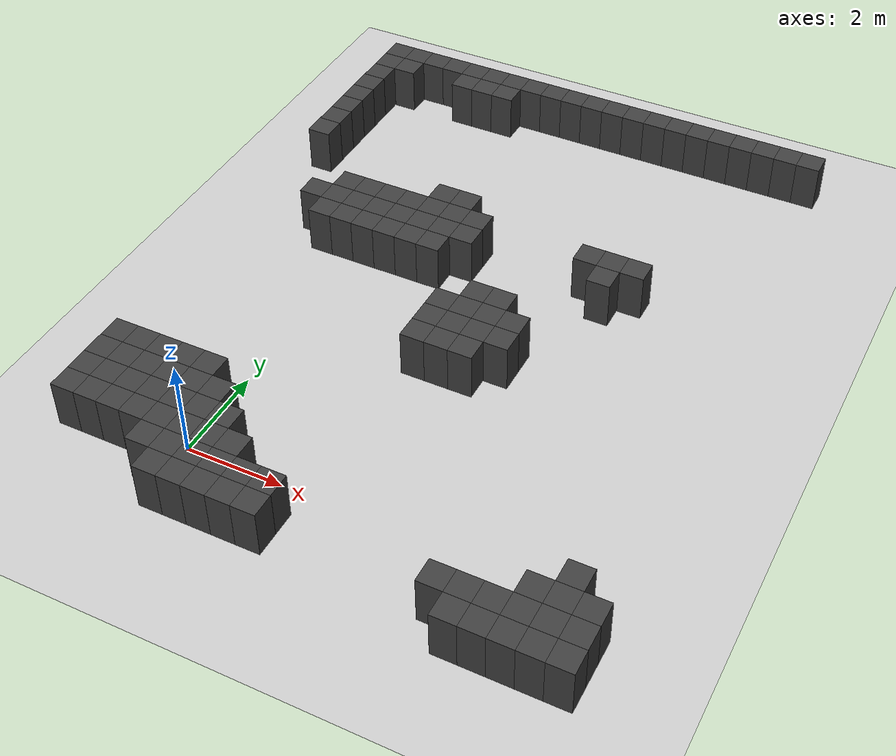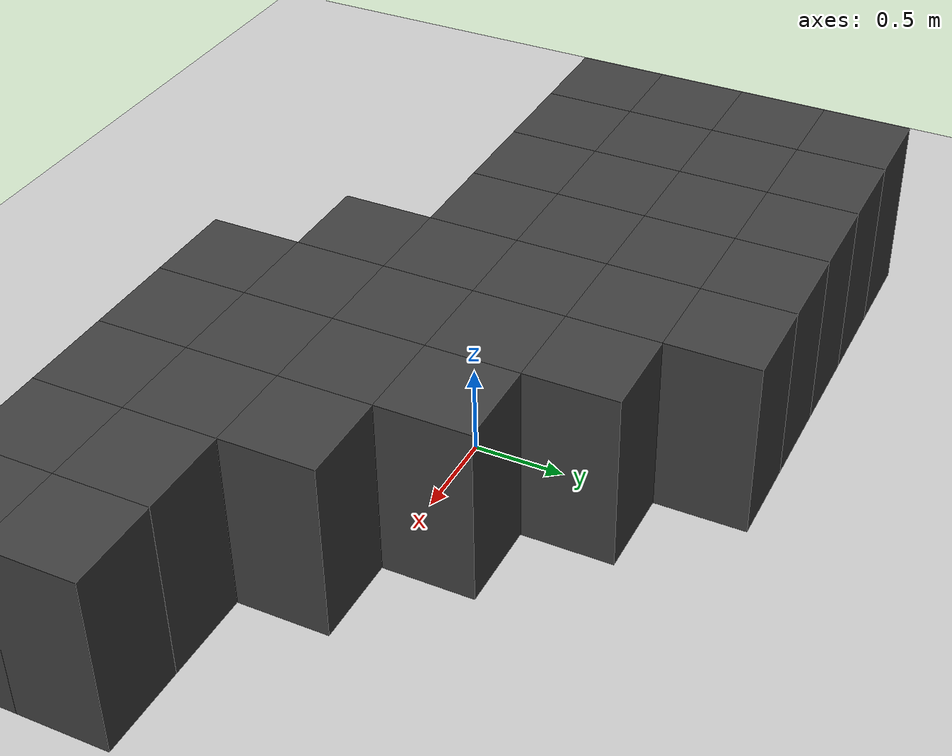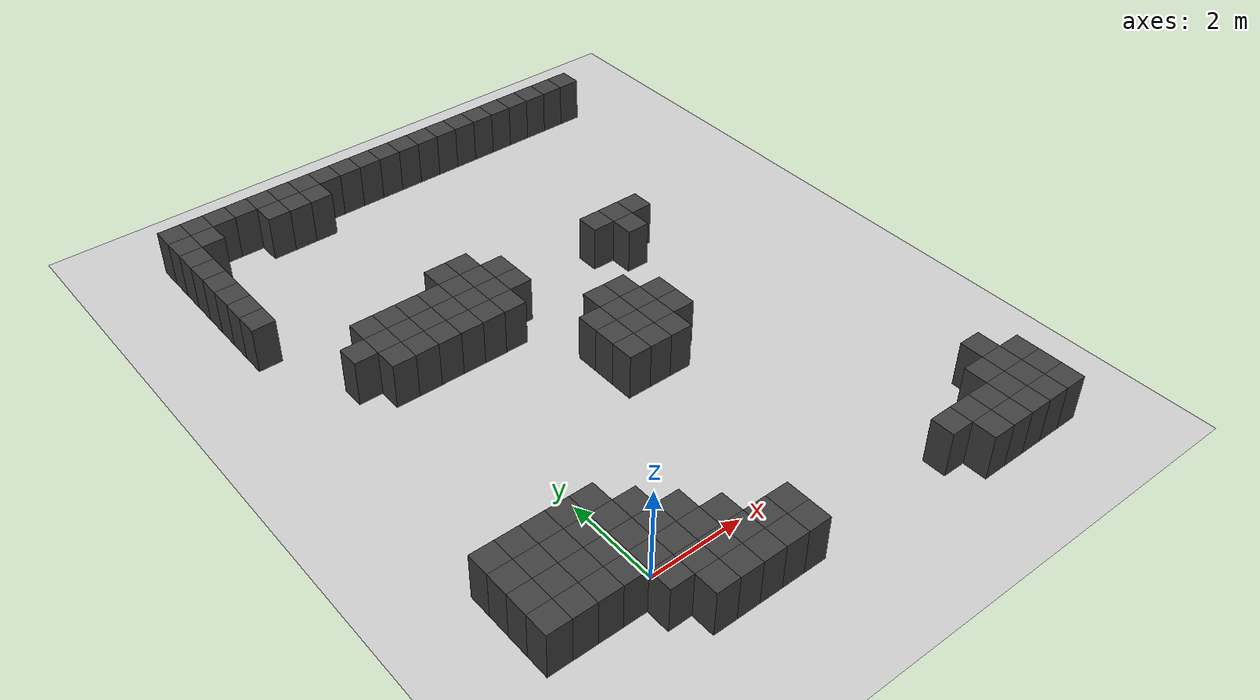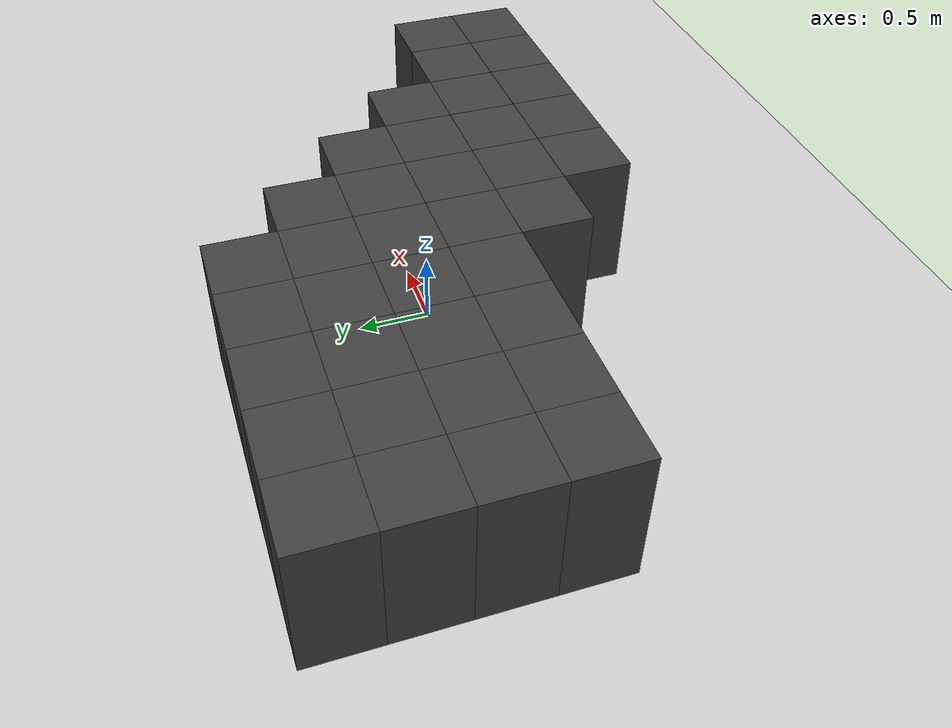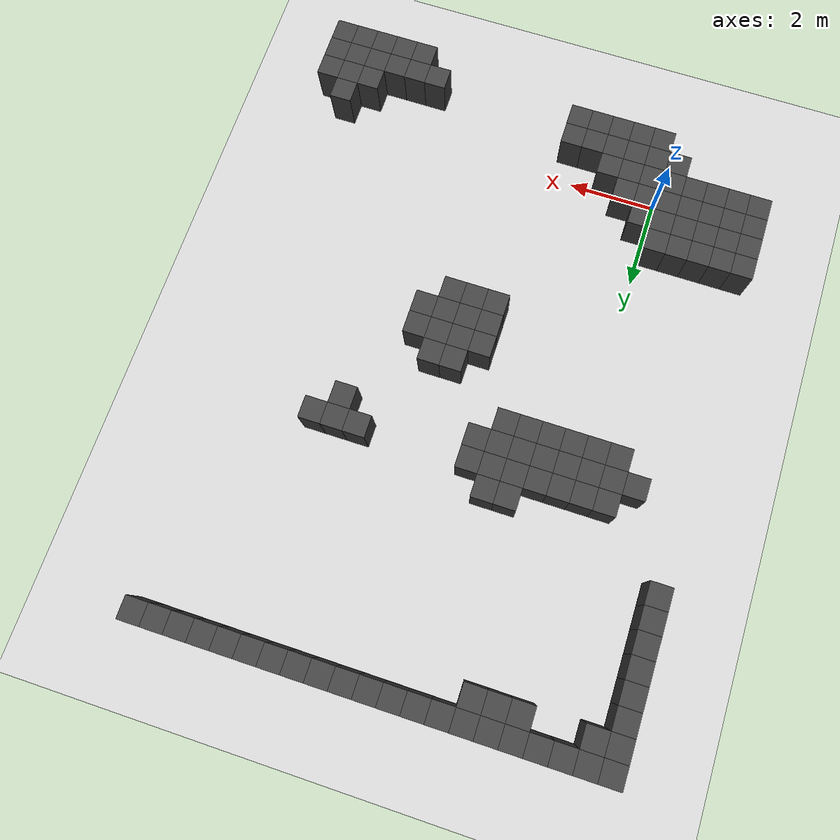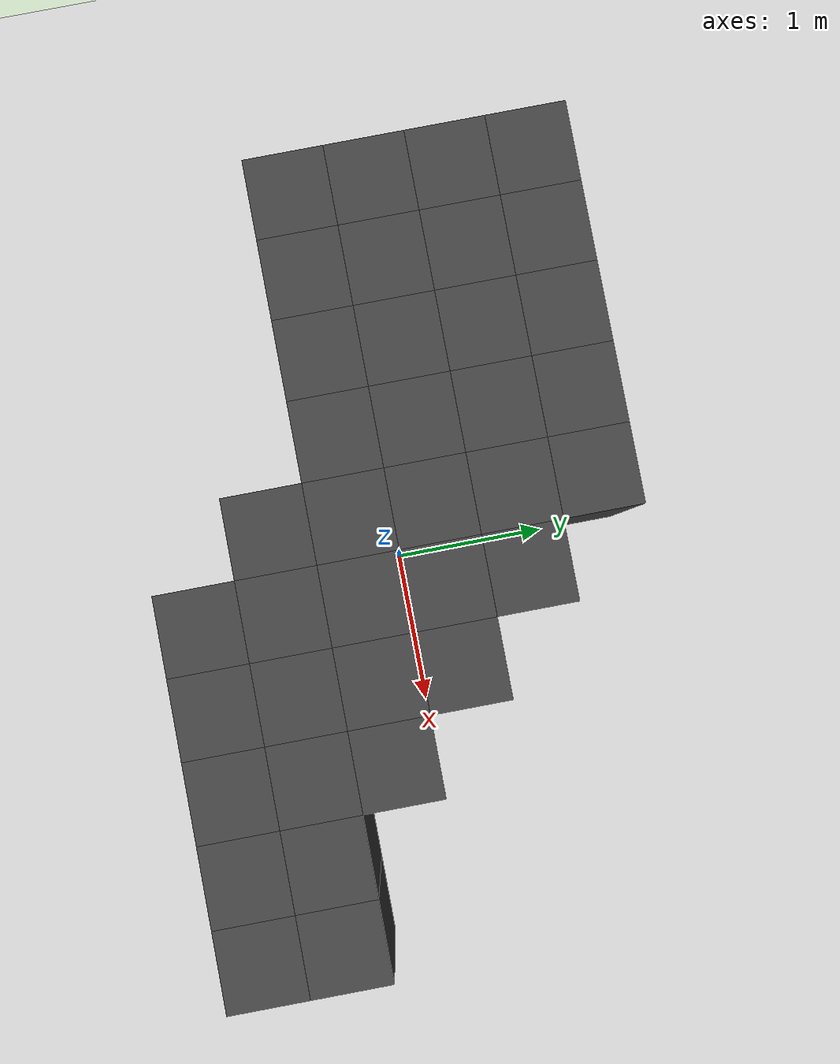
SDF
<sdf version="1.7">
 <world name="map_8382">
  <model name="ground_plane">
   <static>true</static>
   <link name="link">
    <collision name="collision">
     <geometry><plane><normal>0 0 1</normal><size>200 200</size></plane></geometry>
    </collision>
    <visual name="visual">
     <geometry><plane><normal>0 0 1</normal><size>200 200</size></plane></geometry>
     <material><ambient>0.8 0.8 0.8 1</ambient><diffuse>0.8 0.8 0.8 1</diffuse></material>
    </visual>
   </link>
  </model>
  <model name="maze_environment">
   <static>true</static>
   <link name="wall_20">
    <pose>-2.250 12.250 0.500 0 0 0</pose>
    <collision name="col"><geometry><box><size>0.5 0.5 1.0</size></box></geometry></collision>
    <visual name="vis">
     <geometry><box><size>0.5 0.5 1.0</size></box></geometry>
     <material><ambient>0.15 0.15 0.15 1</ambient><diffuse>0.25 0.25 0.25 1</diffuse></material>
    </visual>
   </link>
   <link name="wall_21">
    <pose>-1.750 12.250 0.500 0 0 0</pose>
    <collision name="col"><geometry><box><size>0.5 0.5 1.0</size></box></geometry></collision>
    <visual name="vis">
     <geometry><box><size>0.5 0.5 1.0</size></box></geometry>
     <material><ambient>0.15 0.15 0.15 1</ambient><diffuse>0.25 0.25 0.25 1</diffuse></material>
    </visual>
   </link>
   <link name="wall_22">
    <pose>-1.250 12.250 0.500 0 0 0</pose>
    <collision name="col"><geometry><box><size>0.5 0.5 1.0</size></box></geometry></collision>
    <visual name="vis">
     <geometry><box><size>0.5 0.5 1.0</size></box></geometry>
     <material><ambient>0.15 0.15 0.15 1</ambient><diffuse>0.25 0.25 0.25 1</diffuse></material>
    </visual>
   </link>
   <link name="wall_23">
    <pose>-0.750 12.250 0.500 0 0 0</pose>
    <collision name="col"><geometry><box><size>0.5 0.5 1.0</size></box></geometry></collision>
    <visual name="vis">
     <geometry><box><size>0.5 0.5 1.0</size></box></geometry>
     <material><ambient>0.15 0.15 0.15 1</ambient><diffuse>0.25 0.25 0.25 1</diffuse></material>
    </visual>
   </link>
   <link name="wall_24">
    <pose>-0.250 12.250 0.500 0 0 0</pose>
    <collision name="col"><geometry><box><size>0.5 0.5 1.0</size></box></geometry></collision>
    <visual name="vis">
     <geometry><box><size>0.5 0.5 1.0</size></box></geometry>
     <material><ambient>0.15 0.15 0.15 1</ambient><diffuse>0.25 0.25 0.25 1</diffuse></material>
    </visual>
   </link>
   <link name="wall_25">
    <pose>0.250 12.250 0.500 0 0 0</pose>
    <collision name="col"><geometry><box><size>0.5 0.5 1.0</size></box></geometry></collision>
    <visual name="vis">
     <geometry><box><size>0.5 0.5 1.0</size></box></geometry>
     <material><ambient>0.15 0.15 0.15 1</ambient><diffuse>0.25 0.25 0.25 1</diffuse></material>
    </visual>
   </link>
   <link name="wall_26">
    <pose>0.750 12.250 0.500 0 0 0</pose>
    <collision name="col"><geometry><box><size>0.5 0.5 1.0</size></box></geometry></collision>
    <visual name="vis">
     <geometry><box><size>0.5 0.5 1.0</size></box></geometry>
     <material><ambient>0.15 0.15 0.15 1</ambient><diffuse>0.25 0.25 0.25 1</diffuse></material>
    </visual>
   </link>
   <link name="wall_27">
    <pose>1.250 12.250 0.500 0 0 0</pose>
    <collision name="col"><geometry><box><size>0.5 0.5 1.0</size></box></geometry></collision>
    <visual name="vis">
     <geometry><box><size>0.5 0.5 1.0</size></box></geometry>
     <material><ambient>0.15 0.15 0.15 1</ambient><diffuse>0.25 0.25 0.25 1</diffuse></material>
    </visual>
   </link>
   <link name="wall_28">
    <pose>1.750 12.250 0.500 0 0 0</pose>
    <collision name="col"><geometry><box><size>0.5 0.5 1.0</size></box></geometry></collision>
    <visual name="vis">
     <geometry><box><size>0.5 0.5 1.0</size></box></geometry>
     <material><ambient>0.15 0.15 0.15 1</ambient><diffuse>0.25 0.25 0.25 1</diffuse></material>
    </visual>
   </link>
   <link name="wall_29">
    <pose>2.250 12.250 0.500 0 0 0</pose>
    <collision name="col"><geometry><box><size>0.5 0.5 1.0</size></box></geometry></collision>
    <visual name="vis">
     <geometry><box><size>0.5 0.5 1.0</size></box></geometry>
     <material><ambient>0.15 0.15 0.15 1</ambient><diffuse>0.25 0.25 0.25 1</diffuse></material>
    </visual>
   </link>
   <link name="wall_30">
    <pose>2.750 12.250 0.500 0 0 0</pose>
    <collision name="col"><geometry><box><size>0.5 0.5 1.0</size></box></geometry></collision>
    <visual name="vis">
     <geometry><box><size>0.5 0.5 1.0</size></box></geometry>
     <material><ambient>0.15 0.15 0.15 1</ambient><diffuse>0.25 0.25 0.25 1</diffuse></material>
    </visual>
   </link>
   <link name="wall_31">
    <pose>3.250 12.250 0.500 0 0 0</pose>
    <collision name="col"><geometry><box><size>0.5 0.5 1.0</size></box></geometry></collision>
    <visual name="vis">
     <geometry><box><size>0.5 0.5 1.0</size></box></geometry>
     <material><ambient>0.15 0.15 0.15 1</ambient><diffuse>0.25 0.25 0.25 1</diffuse></material>
    </visual>
   </link>
   <link name="wall_32">
    <pose>3.750 12.250 0.500 0 0 0</pose>
    <collision name="col"><geometry><box><size>0.5 0.5 1.0</size></box></geometry></collision>
    <visual name="vis">
     <geometry><box><size>0.5 0.5 1.0</size></box></geometry>
     <material><ambient>0.15 0.15 0.15 1</ambient><diffuse>0.25 0.25 0.25 1</diffuse></material>
    </visual>
   </link>
   <link name="wall_33">
    <pose>4.250 12.250 0.500 0 0 0</pose>
    <collision name="col"><geometry><box><size>0.5 0.5 1.0</size></box></geometry></collision>
    <visual name="vis">
     <geometry><box><size>0.5 0.5 1.0</size></box></geometry>
     <material><ambient>0.15 0.15 0.15 1</ambient><diffuse>0.25 0.25 0.25 1</diffuse></material>
    </visual>
   </link>
   <link name="wall_34">
    <pose>4.750 12.250 0.500 0 0 0</pose>
    <collision name="col"><geometry><box><size>0.5 0.5 1.0</size></box></geometry></collision>
    <visual name="vis">
     <geometry><box><size>0.5 0.5 1.0</size></box></geometry>
     <material><ambient>0.15 0.15 0.15 1</ambient><diffuse>0.25 0.25 0.25 1</diffuse></material>
    </visual>
   </link>
   <link name="wall_35">
    <pose>5.250 12.250 0.500 0 0 0</pose>
    <collision name="col"><geometry><box><size>0.5 0.5 1.0</size></box></geometry></collision>
    <visual name="vis">
     <geometry><box><size>0.5 0.5 1.0</size></box></geometry>
     <material><ambient>0.15 0.15 0.15 1</ambient><diffuse>0.25 0.25 0.25 1</diffuse></material>
    </visual>
   </link>
   <link name="wall_36">
    <pose>5.750 12.250 0.500 0 0 0</pose>
    <collision name="col"><geometry><box><size>0.5 0.5 1.0</size></box></geometry></collision>
    <visual name="vis">
     <geometry><box><size>0.5 0.5 1.0</size></box></geometry>
     <material><ambient>0.15 0.15 0.15 1</ambient><diffuse>0.25 0.25 0.25 1</diffuse></material>
    </visual>
   </link>
   <link name="wall_37">
    <pose>6.250 12.250 0.500 0 0 0</pose>
    <collision name="col"><geometry><box><size>0.5 0.5 1.0</size></box></geometry></collision>
    <visual name="vis">
     <geometry><box><size>0.5 0.5 1.0</size></box></geometry>
     <material><ambient>0.15 0.15 0.15 1</ambient><diffuse>0.25 0.25 0.25 1</diffuse></material>
    </visual>
   </link>
   <link name="wall_38">
    <pose>6.750 12.250 0.500 0 0 0</pose>
    <collision name="col"><geometry><box><size>0.5 0.5 1.0</size></box></geometry></collision>
    <visual name="vis">
     <geometry><box><size>0.5 0.5 1.0</size></box></geometry>
     <material><ambient>0.15 0.15 0.15 1</ambient><diffuse>0.25 0.25 0.25 1</diffuse></material>
    </visual>
   </link>
   <link name="wall_39">
    <pose>7.250 12.250 0.500 0 0 0</pose>
    <collision name="col"><geometry><box><size>0.5 0.5 1.0</size></box></geometry></collision>
    <visual name="vis">
     <geometry><box><size>0.5 0.5 1.0</size></box></geometry>
     <material><ambient>0.15 0.15 0.15 1</ambient><diffuse>0.25 0.25 0.25 1</diffuse></material>
    </visual>
   </link>
   <link name="wall_40">
    <pose>7.750 12.250 0.500 0 0 0</pose>
    <collision name="col"><geometry><box><size>0.5 0.5 1.0</size></box></geometry></collision>
    <visual name="vis">
     <geometry><box><size>0.5 0.5 1.0</size></box></geometry>
     <material><ambient>0.15 0.15 0.15 1</ambient><diffuse>0.25 0.25 0.25 1</diffuse></material>
    </visual>
   </link>
   <link name="wall_62">
    <pose>-2.250 11.750 0.500 0 0 0</pose>
    <collision name="col"><geometry><box><size>0.5 0.5 1.0</size></box></geometry></collision>
    <visual name="vis">
     <geometry><box><size>0.5 0.5 1.0</size></box></geometry>
     <material><ambient>0.15 0.15 0.15 1</ambient><diffuse>0.25 0.25 0.25 1</diffuse></material>
    </visual>
   </link>
   <link name="wall_63">
    <pose>-1.750 11.750 0.500 0 0 0</pose>
    <collision name="col"><geometry><box><size>0.5 0.5 1.0</size></box></geometry></collision>
    <visual name="vis">
     <geometry><box><size>0.5 0.5 1.0</size></box></geometry>
     <material><ambient>0.15 0.15 0.15 1</ambient><diffuse>0.25 0.25 0.25 1</diffuse></material>
    </visual>
   </link>
   <link name="wall_64">
    <pose>-0.250 11.750 0.500 0 0 0</pose>
    <collision name="col"><geometry><box><size>0.5 0.5 1.0</size></box></geometry></collision>
    <visual name="vis">
     <geometry><box><size>0.5 0.5 1.0</size></box></geometry>
     <material><ambient>0.15 0.15 0.15 1</ambient><diffuse>0.25 0.25 0.25 1</diffuse></material>
    </visual>
   </link>
   <link name="wall_65">
    <pose>0.250 11.750 0.500 0 0 0</pose>
    <collision name="col"><geometry><box><size>0.5 0.5 1.0</size></box></geometry></collision>
    <visual name="vis">
     <geometry><box><size>0.5 0.5 1.0</size></box></geometry>
     <material><ambient>0.15 0.15 0.15 1</ambient><diffuse>0.25 0.25 0.25 1</diffuse></material>
    </visual>
   </link>
   <link name="wall_66">
    <pose>0.750 11.750 0.500 0 0 0</pose>
    <collision name="col"><geometry><box><size>0.5 0.5 1.0</size></box></geometry></collision>
    <visual name="vis">
     <geometry><box><size>0.5 0.5 1.0</size></box></geometry>
     <material><ambient>0.15 0.15 0.15 1</ambient><diffuse>0.25 0.25 0.25 1</diffuse></material>
    </visual>
   </link>
   <link name="wall_82">
    <pose>-2.250 11.250 0.500 0 0 0</pose>
    <collision name="col"><geometry><box><size>0.5 0.5 1.0</size></box></geometry></collision>
    <visual name="vis">
     <geometry><box><size>0.5 0.5 1.0</size></box></geometry>
     <material><ambient>0.15 0.15 0.15 1</ambient><diffuse>0.25 0.25 0.25 1</diffuse></material>
    </visual>
   </link>
   <link name="wall_94">
    <pose>-2.250 10.750 0.500 0 0 0</pose>
    <collision name="col"><geometry><box><size>0.5 0.5 1.0</size></box></geometry></collision>
    <visual name="vis">
     <geometry><box><size>0.5 0.5 1.0</size></box></geometry>
     <material><ambient>0.15 0.15 0.15 1</ambient><diffuse>0.25 0.25 0.25 1</diffuse></material>
    </visual>
   </link>
   <link name="wall_105">
    <pose>-2.250 10.250 0.500 0 0 0</pose>
    <collision name="col"><geometry><box><size>0.5 0.5 1.0</size></box></geometry></collision>
    <visual name="vis">
     <geometry><box><size>0.5 0.5 1.0</size></box></geometry>
     <material><ambient>0.15 0.15 0.15 1</ambient><diffuse>0.25 0.25 0.25 1</diffuse></material>
    </visual>
   </link>
   <link name="wall_120">
    <pose>-2.250 9.750 0.500 0 0 0</pose>
    <collision name="col"><geometry><box><size>0.5 0.5 1.0</size></box></geometry></collision>
    <visual name="vis">
     <geometry><box><size>0.5 0.5 1.0</size></box></geometry>
     <material><ambient>0.15 0.15 0.15 1</ambient><diffuse>0.25 0.25 0.25 1</diffuse></material>
    </visual>
   </link>
   <link name="wall_139">
    <pose>-2.250 9.250 0.500 0 0 0</pose>
    <collision name="col"><geometry><box><size>0.5 0.5 1.0</size></box></geometry></collision>
    <visual name="vis">
     <geometry><box><size>0.5 0.5 1.0</size></box></geometry>
     <material><ambient>0.15 0.15 0.15 1</ambient><diffuse>0.25 0.25 0.25 1</diffuse></material>
    </visual>
   </link>
   <link name="wall_158">
    <pose>-2.250 8.750 0.500 0 0 0</pose>
    <collision name="col"><geometry><box><size>0.5 0.5 1.0</size></box></geometry></collision>
    <visual name="vis">
     <geometry><box><size>0.5 0.5 1.0</size></box></geometry>
     <material><ambient>0.15 0.15 0.15 1</ambient><diffuse>0.25 0.25 0.25 1</diffuse></material>
    </visual>
   </link>
   <link name="wall_189">
    <pose>1.250 7.750 0.500 0 0 0</pose>
    <collision name="col"><geometry><box><size>0.5 0.5 1.0</size></box></geometry></collision>
    <visual name="vis">
     <geometry><box><size>0.5 0.5 1.0</size></box></geometry>
     <material><ambient>0.15 0.15 0.15 1</ambient><diffuse>0.25 0.25 0.25 1</diffuse></material>
    </visual>
   </link>
   <link name="wall_190">
    <pose>1.750 7.750 0.500 0 0 0</pose>
    <collision name="col"><geometry><box><size>0.5 0.5 1.0</size></box></geometry></collision>
    <visual name="vis">
     <geometry><box><size>0.5 0.5 1.0</size></box></geometry>
     <material><ambient>0.15 0.15 0.15 1</ambient><diffuse>0.25 0.25 0.25 1</diffuse></material>
    </visual>
   </link>
   <link name="wall_203">
    <pose>-0.750 7.250 0.500 0 0 0</pose>
    <collision name="col"><geometry><box><size>0.5 0.5 1.0</size></box></geometry></collision>
    <visual name="vis">
     <geometry><box><size>0.5 0.5 1.0</size></box></geometry>
     <material><ambient>0.15 0.15 0.15 1</ambient><diffuse>0.25 0.25 0.25 1</diffuse></material>
    </visual>
   </link>
   <link name="wall_204">
    <pose>-0.250 7.250 0.500 0 0 0</pose>
    <collision name="col"><geometry><box><size>0.5 0.5 1.0</size></box></geometry></collision>
    <visual name="vis">
     <geometry><box><size>0.5 0.5 1.0</size></box></geometry>
     <material><ambient>0.15 0.15 0.15 1</ambient><diffuse>0.25 0.25 0.25 1</diffuse></material>
    </visual>
   </link>
   <link name="wall_205">
    <pose>0.250 7.250 0.500 0 0 0</pose>
    <collision name="col"><geometry><box><size>0.5 0.5 1.0</size></box></geometry></collision>
    <visual name="vis">
     <geometry><box><size>0.5 0.5 1.0</size></box></geometry>
     <material><ambient>0.15 0.15 0.15 1</ambient><diffuse>0.25 0.25 0.25 1</diffuse></material>
    </visual>
   </link>
   <link name="wall_206">
    <pose>0.750 7.250 0.500 0 0 0</pose>
    <collision name="col"><geometry><box><size>0.5 0.5 1.0</size></box></geometry></collision>
    <visual name="vis">
     <geometry><box><size>0.5 0.5 1.0</size></box></geometry>
     <material><ambient>0.15 0.15 0.15 1</ambient><diffuse>0.25 0.25 0.25 1</diffuse></material>
    </visual>
   </link>
   <link name="wall_207">
    <pose>1.250 7.250 0.500 0 0 0</pose>
    <collision name="col"><geometry><box><size>0.5 0.5 1.0</size></box></geometry></collision>
    <visual name="vis">
     <geometry><box><size>0.5 0.5 1.0</size></box></geometry>
     <material><ambient>0.15 0.15 0.15 1</ambient><diffuse>0.25 0.25 0.25 1</diffuse></material>
    </visual>
   </link>
   <link name="wall_208">
    <pose>1.750 7.250 0.500 0 0 0</pose>
    <collision name="col"><geometry><box><size>0.5 0.5 1.0</size></box></geometry></collision>
    <visual name="vis">
     <geometry><box><size>0.5 0.5 1.0</size></box></geometry>
     <material><ambient>0.15 0.15 0.15 1</ambient><diffuse>0.25 0.25 0.25 1</diffuse></material>
    </visual>
   </link>
   <link name="wall_209">
    <pose>2.250 7.250 0.500 0 0 0</pose>
    <collision name="col"><geometry><box><size>0.5 0.5 1.0</size></box></geometry></collision>
    <visual name="vis">
     <geometry><box><size>0.5 0.5 1.0</size></box></geometry>
     <material><ambient>0.15 0.15 0.15 1</ambient><diffuse>0.25 0.25 0.25 1</diffuse></material>
    </visual>
   </link>
   <link name="wall_210">
    <pose>4.750 7.250 0.500 0 0 0</pose>
    <collision name="col"><geometry><box><size>0.5 0.5 1.0</size></box></geometry></collision>
    <visual name="vis">
     <geometry><box><size>0.5 0.5 1.0</size></box></geometry>
     <material><ambient>0.15 0.15 0.15 1</ambient><diffuse>0.25 0.25 0.25 1</diffuse></material>
    </visual>
   </link>
   <link name="wall_211">
    <pose>5.250 7.250 0.500 0 0 0</pose>
    <collision name="col"><geometry><box><size>0.5 0.5 1.0</size></box></geometry></collision>
    <visual name="vis">
     <geometry><box><size>0.5 0.5 1.0</size></box></geometry>
     <material><ambient>0.15 0.15 0.15 1</ambient><diffuse>0.25 0.25 0.25 1</diffuse></material>
    </visual>
   </link>
   <link name="wall_212">
    <pose>5.750 7.250 0.500 0 0 0</pose>
    <collision name="col"><geometry><box><size>0.5 0.5 1.0</size></box></geometry></collision>
    <visual name="vis">
     <geometry><box><size>0.5 0.5 1.0</size></box></geometry>
     <material><ambient>0.15 0.15 0.15 1</ambient><diffuse>0.25 0.25 0.25 1</diffuse></material>
    </visual>
   </link>
   <link name="wall_226">
    <pose>-1.250 6.750 0.500 0 0 0</pose>
    <collision name="col"><geometry><box><size>0.5 0.5 1.0</size></box></geometry></collision>
    <visual name="vis">
     <geometry><box><size>0.5 0.5 1.0</size></box></geometry>
     <material><ambient>0.15 0.15 0.15 1</ambient><diffuse>0.25 0.25 0.25 1</diffuse></material>
    </visual>
   </link>
   <link name="wall_227">
    <pose>-0.750 6.750 0.500 0 0 0</pose>
    <collision name="col"><geometry><box><size>0.5 0.5 1.0</size></box></geometry></collision>
    <visual name="vis">
     <geometry><box><size>0.5 0.5 1.0</size></box></geometry>
     <material><ambient>0.15 0.15 0.15 1</ambient><diffuse>0.25 0.25 0.25 1</diffuse></material>
    </visual>
   </link>
   <link name="wall_228">
    <pose>-0.250 6.750 0.500 0 0 0</pose>
    <collision name="col"><geometry><box><size>0.5 0.5 1.0</size></box></geometry></collision>
    <visual name="vis">
     <geometry><box><size>0.5 0.5 1.0</size></box></geometry>
     <material><ambient>0.15 0.15 0.15 1</ambient><diffuse>0.25 0.25 0.25 1</diffuse></material>
    </visual>
   </link>
   <link name="wall_229">
    <pose>0.250 6.750 0.500 0 0 0</pose>
    <collision name="col"><geometry><box><size>0.5 0.5 1.0</size></box></geometry></collision>
    <visual name="vis">
     <geometry><box><size>0.5 0.5 1.0</size></box></geometry>
     <material><ambient>0.15 0.15 0.15 1</ambient><diffuse>0.25 0.25 0.25 1</diffuse></material>
    </visual>
   </link>
   <link name="wall_230">
    <pose>0.750 6.750 0.500 0 0 0</pose>
    <collision name="col"><geometry><box><size>0.5 0.5 1.0</size></box></geometry></collision>
    <visual name="vis">
     <geometry><box><size>0.5 0.5 1.0</size></box></geometry>
     <material><ambient>0.15 0.15 0.15 1</ambient><diffuse>0.25 0.25 0.25 1</diffuse></material>
    </visual>
   </link>
   <link name="wall_231">
    <pose>1.250 6.750 0.500 0 0 0</pose>
    <collision name="col"><geometry><box><size>0.5 0.5 1.0</size></box></geometry></collision>
    <visual name="vis">
     <geometry><box><size>0.5 0.5 1.0</size></box></geometry>
     <material><ambient>0.15 0.15 0.15 1</ambient><diffuse>0.25 0.25 0.25 1</diffuse></material>
    </visual>
   </link>
   <link name="wall_232">
    <pose>1.750 6.750 0.500 0 0 0</pose>
    <collision name="col"><geometry><box><size>0.5 0.5 1.0</size></box></geometry></collision>
    <visual name="vis">
     <geometry><box><size>0.5 0.5 1.0</size></box></geometry>
     <material><ambient>0.15 0.15 0.15 1</ambient><diffuse>0.25 0.25 0.25 1</diffuse></material>
    </visual>
   </link>
   <link name="wall_233">
    <pose>2.250 6.750 0.500 0 0 0</pose>
    <collision name="col"><geometry><box><size>0.5 0.5 1.0</size></box></geometry></collision>
    <visual name="vis">
     <geometry><box><size>0.5 0.5 1.0</size></box></geometry>
     <material><ambient>0.15 0.15 0.15 1</ambient><diffuse>0.25 0.25 0.25 1</diffuse></material>
    </visual>
   </link>
   <link name="wall_234">
    <pose>5.250 6.750 0.500 0 0 0</pose>
    <collision name="col"><geometry><box><size>0.5 0.5 1.0</size></box></geometry></collision>
    <visual name="vis">
     <geometry><box><size>0.5 0.5 1.0</size></box></geometry>
     <material><ambient>0.15 0.15 0.15 1</ambient><diffuse>0.25 0.25 0.25 1</diffuse></material>
    </visual>
   </link>
   <link name="wall_248">
    <pose>-0.750 6.250 0.500 0 0 0</pose>
    <collision name="col"><geometry><box><size>0.5 0.5 1.0</size></box></geometry></collision>
    <visual name="vis">
     <geometry><box><size>0.5 0.5 1.0</size></box></geometry>
     <material><ambient>0.15 0.15 0.15 1</ambient><diffuse>0.25 0.25 0.25 1</diffuse></material>
    </visual>
   </link>
   <link name="wall_249">
    <pose>-0.250 6.250 0.500 0 0 0</pose>
    <collision name="col"><geometry><box><size>0.5 0.5 1.0</size></box></geometry></collision>
    <visual name="vis">
     <geometry><box><size>0.5 0.5 1.0</size></box></geometry>
     <material><ambient>0.15 0.15 0.15 1</ambient><diffuse>0.25 0.25 0.25 1</diffuse></material>
    </visual>
   </link>
   <link name="wall_250">
    <pose>0.250 6.250 0.500 0 0 0</pose>
    <collision name="col"><geometry><box><size>0.5 0.5 1.0</size></box></geometry></collision>
    <visual name="vis">
     <geometry><box><size>0.5 0.5 1.0</size></box></geometry>
     <material><ambient>0.15 0.15 0.15 1</ambient><diffuse>0.25 0.25 0.25 1</diffuse></material>
    </visual>
   </link>
   <link name="wall_251">
    <pose>0.750 6.250 0.500 0 0 0</pose>
    <collision name="col"><geometry><box><size>0.5 0.5 1.0</size></box></geometry></collision>
    <visual name="vis">
     <geometry><box><size>0.5 0.5 1.0</size></box></geometry>
     <material><ambient>0.15 0.15 0.15 1</ambient><diffuse>0.25 0.25 0.25 1</diffuse></material>
    </visual>
   </link>
   <link name="wall_252">
    <pose>1.250 6.250 0.500 0 0 0</pose>
    <collision name="col"><geometry><box><size>0.5 0.5 1.0</size></box></geometry></collision>
    <visual name="vis">
     <geometry><box><size>0.5 0.5 1.0</size></box></geometry>
     <material><ambient>0.15 0.15 0.15 1</ambient><diffuse>0.25 0.25 0.25 1</diffuse></material>
    </visual>
   </link>
   <link name="wall_253">
    <pose>1.750 6.250 0.500 0 0 0</pose>
    <collision name="col"><geometry><box><size>0.5 0.5 1.0</size></box></geometry></collision>
    <visual name="vis">
     <geometry><box><size>0.5 0.5 1.0</size></box></geometry>
     <material><ambient>0.15 0.15 0.15 1</ambient><diffuse>0.25 0.25 0.25 1</diffuse></material>
    </visual>
   </link>
   <link name="wall_272">
    <pose>3.250 5.250 0.500 0 0 0</pose>
    <collision name="col"><geometry><box><size>0.5 0.5 1.0</size></box></geometry></collision>
    <visual name="vis">
     <geometry><box><size>0.5 0.5 1.0</size></box></geometry>
     <material><ambient>0.15 0.15 0.15 1</ambient><diffuse>0.25 0.25 0.25 1</diffuse></material>
    </visual>
   </link>
   <link name="wall_273">
    <pose>3.750 5.250 0.500 0 0 0</pose>
    <collision name="col"><geometry><box><size>0.5 0.5 1.0</size></box></geometry></collision>
    <visual name="vis">
     <geometry><box><size>0.5 0.5 1.0</size></box></geometry>
     <material><ambient>0.15 0.15 0.15 1</ambient><diffuse>0.25 0.25 0.25 1</diffuse></material>
    </visual>
   </link>
   <link name="wall_282">
    <pose>2.750 4.750 0.500 0 0 0</pose>
    <collision name="col"><geometry><box><size>0.5 0.5 1.0</size></box></geometry></collision>
    <visual name="vis">
     <geometry><box><size>0.5 0.5 1.0</size></box></geometry>
     <material><ambient>0.15 0.15 0.15 1</ambient><diffuse>0.25 0.25 0.25 1</diffuse></material>
    </visual>
   </link>
   <link name="wall_283">
    <pose>3.250 4.750 0.500 0 0 0</pose>
    <collision name="col"><geometry><box><size>0.5 0.5 1.0</size></box></geometry></collision>
    <visual name="vis">
     <geometry><box><size>0.5 0.5 1.0</size></box></geometry>
     <material><ambient>0.15 0.15 0.15 1</ambient><diffuse>0.25 0.25 0.25 1</diffuse></material>
    </visual>
   </link>
   <link name="wall_284">
    <pose>3.750 4.750 0.500 0 0 0</pose>
    <collision name="col"><geometry><box><size>0.5 0.5 1.0</size></box></geometry></collision>
    <visual name="vis">
     <geometry><box><size>0.5 0.5 1.0</size></box></geometry>
     <material><ambient>0.15 0.15 0.15 1</ambient><diffuse>0.25 0.25 0.25 1</diffuse></material>
    </visual>
   </link>
   <link name="wall_285">
    <pose>4.250 4.750 0.500 0 0 0</pose>
    <collision name="col"><geometry><box><size>0.5 0.5 1.0</size></box></geometry></collision>
    <visual name="vis">
     <geometry><box><size>0.5 0.5 1.0</size></box></geometry>
     <material><ambient>0.15 0.15 0.15 1</ambient><diffuse>0.25 0.25 0.25 1</diffuse></material>
    </visual>
   </link>
   <link name="wall_293">
    <pose>2.750 4.250 0.500 0 0 0</pose>
    <collision name="col"><geometry><box><size>0.5 0.5 1.0</size></box></geometry></collision>
    <visual name="vis">
     <geometry><box><size>0.5 0.5 1.0</size></box></geometry>
     <material><ambient>0.15 0.15 0.15 1</ambient><diffuse>0.25 0.25 0.25 1</diffuse></material>
    </visual>
   </link>
   <link name="wall_294">
    <pose>3.250 4.250 0.500 0 0 0</pose>
    <collision name="col"><geometry><box><size>0.5 0.5 1.0</size></box></geometry></collision>
    <visual name="vis">
     <geometry><box><size>0.5 0.5 1.0</size></box></geometry>
     <material><ambient>0.15 0.15 0.15 1</ambient><diffuse>0.25 0.25 0.25 1</diffuse></material>
    </visual>
   </link>
   <link name="wall_295">
    <pose>3.750 4.250 0.500 0 0 0</pose>
    <collision name="col"><geometry><box><size>0.5 0.5 1.0</size></box></geometry></collision>
    <visual name="vis">
     <geometry><box><size>0.5 0.5 1.0</size></box></geometry>
     <material><ambient>0.15 0.15 0.15 1</ambient><diffuse>0.25 0.25 0.25 1</diffuse></material>
    </visual>
   </link>
   <link name="wall_296">
    <pose>4.250 4.250 0.500 0 0 0</pose>
    <collision name="col"><geometry><box><size>0.5 0.5 1.0</size></box></geometry></collision>
    <visual name="vis">
     <geometry><box><size>0.5 0.5 1.0</size></box></geometry>
     <material><ambient>0.15 0.15 0.15 1</ambient><diffuse>0.25 0.25 0.25 1</diffuse></material>
    </visual>
   </link>
   <link name="wall_301">
    <pose>2.750 3.750 0.500 0 0 0</pose>
    <collision name="col"><geometry><box><size>0.5 0.5 1.0</size></box></geometry></collision>
    <visual name="vis">
     <geometry><box><size>0.5 0.5 1.0</size></box></geometry>
     <material><ambient>0.15 0.15 0.15 1</ambient><diffuse>0.25 0.25 0.25 1</diffuse></material>
    </visual>
   </link>
   <link name="wall_302">
    <pose>3.250 3.750 0.500 0 0 0</pose>
    <collision name="col"><geometry><box><size>0.5 0.5 1.0</size></box></geometry></collision>
    <visual name="vis">
     <geometry><box><size>0.5 0.5 1.0</size></box></geometry>
     <material><ambient>0.15 0.15 0.15 1</ambient><diffuse>0.25 0.25 0.25 1</diffuse></material>
    </visual>
   </link>
   <link name="wall_303">
    <pose>3.750 3.750 0.500 0 0 0</pose>
    <collision name="col"><geometry><box><size>0.5 0.5 1.0</size></box></geometry></collision>
    <visual name="vis">
     <geometry><box><size>0.5 0.5 1.0</size></box></geometry>
     <material><ambient>0.15 0.15 0.15 1</ambient><diffuse>0.25 0.25 0.25 1</diffuse></material>
    </visual>
   </link>
   <link name="wall_343">
    <pose>-2.250 1.250 0.500 0 0 0</pose>
    <collision name="col"><geometry><box><size>0.5 0.5 1.0</size></box></geometry></collision>
    <visual name="vis">
     <geometry><box><size>0.5 0.5 1.0</size></box></geometry>
     <material><ambient>0.15 0.15 0.15 1</ambient><diffuse>0.25 0.25 0.25 1</diffuse></material>
    </visual>
   </link>
   <link name="wall_344">
    <pose>-1.750 1.250 0.500 0 0 0</pose>
    <collision name="col"><geometry><box><size>0.5 0.5 1.0</size></box></geometry></collision>
    <visual name="vis">
     <geometry><box><size>0.5 0.5 1.0</size></box></geometry>
     <material><ambient>0.15 0.15 0.15 1</ambient><diffuse>0.25 0.25 0.25 1</diffuse></material>
    </visual>
   </link>
   <link name="wall_345">
    <pose>-1.250 1.250 0.500 0 0 0</pose>
    <collision name="col"><geometry><box><size>0.5 0.5 1.0</size></box></geometry></collision>
    <visual name="vis">
     <geometry><box><size>0.5 0.5 1.0</size></box></geometry>
     <material><ambient>0.15 0.15 0.15 1</ambient><diffuse>0.25 0.25 0.25 1</diffuse></material>
    </visual>
   </link>
   <link name="wall_346">
    <pose>-0.750 1.250 0.500 0 0 0</pose>
    <collision name="col"><geometry><box><size>0.5 0.5 1.0</size></box></geometry></collision>
    <visual name="vis">
     <geometry><box><size>0.5 0.5 1.0</size></box></geometry>
     <material><ambient>0.15 0.15 0.15 1</ambient><diffuse>0.25 0.25 0.25 1</diffuse></material>
    </visual>
   </link>
   <link name="wall_347">
    <pose>-0.250 1.250 0.500 0 0 0</pose>
    <collision name="col"><geometry><box><size>0.5 0.5 1.0</size></box></geometry></collision>
    <visual name="vis">
     <geometry><box><size>0.5 0.5 1.0</size></box></geometry>
     <material><ambient>0.15 0.15 0.15 1</ambient><diffuse>0.25 0.25 0.25 1</diffuse></material>
    </visual>
   </link>
   <link name="wall_360">
    <pose>-2.250 0.750 0.500 0 0 0</pose>
    <collision name="col"><geometry><box><size>0.5 0.5 1.0</size></box></geometry></collision>
    <visual name="vis">
     <geometry><box><size>0.5 0.5 1.0</size></box></geometry>
     <material><ambient>0.15 0.15 0.15 1</ambient><diffuse>0.25 0.25 0.25 1</diffuse></material>
    </visual>
   </link>
   <link name="wall_361">
    <pose>-1.750 0.750 0.500 0 0 0</pose>
    <collision name="col"><geometry><box><size>0.5 0.5 1.0</size></box></geometry></collision>
    <visual name="vis">
     <geometry><box><size>0.5 0.5 1.0</size></box></geometry>
     <material><ambient>0.15 0.15 0.15 1</ambient><diffuse>0.25 0.25 0.25 1</diffuse></material>
    </visual>
   </link>
   <link name="wall_362">
    <pose>-1.250 0.750 0.500 0 0 0</pose>
    <collision name="col"><geometry><box><size>0.5 0.5 1.0</size></box></geometry></collision>
    <visual name="vis">
     <geometry><box><size>0.5 0.5 1.0</size></box></geometry>
     <material><ambient>0.15 0.15 0.15 1</ambient><diffuse>0.25 0.25 0.25 1</diffuse></material>
    </visual>
   </link>
   <link name="wall_363">
    <pose>-0.750 0.750 0.500 0 0 0</pose>
    <collision name="col"><geometry><box><size>0.5 0.5 1.0</size></box></geometry></collision>
    <visual name="vis">
     <geometry><box><size>0.5 0.5 1.0</size></box></geometry>
     <material><ambient>0.15 0.15 0.15 1</ambient><diffuse>0.25 0.25 0.25 1</diffuse></material>
    </visual>
   </link>
   <link name="wall_364">
    <pose>-0.250 0.750 0.500 0 0 0</pose>
    <collision name="col"><geometry><box><size>0.5 0.5 1.0</size></box></geometry></collision>
    <visual name="vis">
     <geometry><box><size>0.5 0.5 1.0</size></box></geometry>
     <material><ambient>0.15 0.15 0.15 1</ambient><diffuse>0.25 0.25 0.25 1</diffuse></material>
    </visual>
   </link>
   <link name="wall_365">
    <pose>0.250 0.750 0.500 0 0 0</pose>
    <collision name="col"><geometry><box><size>0.5 0.5 1.0</size></box></geometry></collision>
    <visual name="vis">
     <geometry><box><size>0.5 0.5 1.0</size></box></geometry>
     <material><ambient>0.15 0.15 0.15 1</ambient><diffuse>0.25 0.25 0.25 1</diffuse></material>
    </visual>
   </link>
   <link name="wall_377">
    <pose>-2.250 0.250 0.500 0 0 0</pose>
    <collision name="col"><geometry><box><size>0.5 0.5 1.0</size></box></geometry></collision>
    <visual name="vis">
     <geometry><box><size>0.5 0.5 1.0</size></box></geometry>
     <material><ambient>0.15 0.15 0.15 1</ambient><diffuse>0.25 0.25 0.25 1</diffuse></material>
    </visual>
   </link>
   <link name="wall_378">
    <pose>-1.750 0.250 0.500 0 0 0</pose>
    <collision name="col"><geometry><box><size>0.5 0.5 1.0</size></box></geometry></collision>
    <visual name="vis">
     <geometry><box><size>0.5 0.5 1.0</size></box></geometry>
     <material><ambient>0.15 0.15 0.15 1</ambient><diffuse>0.25 0.25 0.25 1</diffuse></material>
    </visual>
   </link>
   <link name="wall_379">
    <pose>-1.250 0.250 0.500 0 0 0</pose>
    <collision name="col"><geometry><box><size>0.5 0.5 1.0</size></box></geometry></collision>
    <visual name="vis">
     <geometry><box><size>0.5 0.5 1.0</size></box></geometry>
     <material><ambient>0.15 0.15 0.15 1</ambient><diffuse>0.25 0.25 0.25 1</diffuse></material>
    </visual>
   </link>
   <link name="wall_380">
    <pose>-0.750 0.250 0.500 0 0 0</pose>
    <collision name="col"><geometry><box><size>0.5 0.5 1.0</size></box></geometry></collision>
    <visual name="vis">
     <geometry><box><size>0.5 0.5 1.0</size></box></geometry>
     <material><ambient>0.15 0.15 0.15 1</ambient><diffuse>0.25 0.25 0.25 1</diffuse></material>
    </visual>
   </link>
   <link name="wall_381">
    <pose>-0.250 0.250 0.500 0 0 0</pose>
    <collision name="col"><geometry><box><size>0.5 0.5 1.0</size></box></geometry></collision>
    <visual name="vis">
     <geometry><box><size>0.5 0.5 1.0</size></box></geometry>
     <material><ambient>0.15 0.15 0.15 1</ambient><diffuse>0.25 0.25 0.25 1</diffuse></material>
    </visual>
   </link>
   <link name="wall_382">
    <pose>0.250 0.250 0.500 0 0 0</pose>
    <collision name="col"><geometry><box><size>0.5 0.5 1.0</size></box></geometry></collision>
    <visual name="vis">
     <geometry><box><size>0.5 0.5 1.0</size></box></geometry>
     <material><ambient>0.15 0.15 0.15 1</ambient><diffuse>0.25 0.25 0.25 1</diffuse></material>
    </visual>
   </link>
   <link name="wall_383">
    <pose>0.750 0.250 0.500 0 0 0</pose>
    <collision name="col"><geometry><box><size>0.5 0.5 1.0</size></box></geometry></collision>
    <visual name="vis">
     <geometry><box><size>0.5 0.5 1.0</size></box></geometry>
     <material><ambient>0.15 0.15 0.15 1</ambient><diffuse>0.25 0.25 0.25 1</diffuse></material>
    </visual>
   </link>
   <link name="wall_394">
    <pose>-2.250 -0.250 0.500 0 0 0</pose>
    <collision name="col"><geometry><box><size>0.5 0.5 1.0</size></box></geometry></collision>
    <visual name="vis">
     <geometry><box><size>0.5 0.5 1.0</size></box></geometry>
     <material><ambient>0.15 0.15 0.15 1</ambient><diffuse>0.25 0.25 0.25 1</diffuse></material>
    </visual>
   </link>
   <link name="wall_395">
    <pose>-1.750 -0.250 0.500 0 0 0</pose>
    <collision name="col"><geometry><box><size>0.5 0.5 1.0</size></box></geometry></collision>
    <visual name="vis">
     <geometry><box><size>0.5 0.5 1.0</size></box></geometry>
     <material><ambient>0.15 0.15 0.15 1</ambient><diffuse>0.25 0.25 0.25 1</diffuse></material>
    </visual>
   </link>
   <link name="wall_396">
    <pose>-1.250 -0.250 0.500 0 0 0</pose>
    <collision name="col"><geometry><box><size>0.5 0.5 1.0</size></box></geometry></collision>
    <visual name="vis">
     <geometry><box><size>0.5 0.5 1.0</size></box></geometry>
     <material><ambient>0.15 0.15 0.15 1</ambient><diffuse>0.25 0.25 0.25 1</diffuse></material>
    </visual>
   </link>
   <link name="wall_397">
    <pose>-0.750 -0.250 0.500 0 0 0</pose>
    <collision name="col"><geometry><box><size>0.5 0.5 1.0</size></box></geometry></collision>
    <visual name="vis">
     <geometry><box><size>0.5 0.5 1.0</size></box></geometry>
     <material><ambient>0.15 0.15 0.15 1</ambient><diffuse>0.25 0.25 0.25 1</diffuse></material>
    </visual>
   </link>
   <link name="wall_398">
    <pose>-0.250 -0.250 0.500 0 0 0</pose>
    <collision name="col"><geometry><box><size>0.5 0.5 1.0</size></box></geometry></collision>
    <visual name="vis">
     <geometry><box><size>0.5 0.5 1.0</size></box></geometry>
     <material><ambient>0.15 0.15 0.15 1</ambient><diffuse>0.25 0.25 0.25 1</diffuse></material>
    </visual>
   </link>
   <link name="wall_399">
    <pose>0.250 -0.250 0.500 0 0 0</pose>
    <collision name="col"><geometry><box><size>0.5 0.5 1.0</size></box></geometry></collision>
    <visual name="vis">
     <geometry><box><size>0.5 0.5 1.0</size></box></geometry>
     <material><ambient>0.15 0.15 0.15 1</ambient><diffuse>0.25 0.25 0.25 1</diffuse></material>
    </visual>
   </link>
   <link name="wall_400">
    <pose>0.750 -0.250 0.500 0 0 0</pose>
    <collision name="col"><geometry><box><size>0.5 0.5 1.0</size></box></geometry></collision>
    <visual name="vis">
     <geometry><box><size>0.5 0.5 1.0</size></box></geometry>
     <material><ambient>0.15 0.15 0.15 1</ambient><diffuse>0.25 0.25 0.25 1</diffuse></material>
    </visual>
   </link>
   <link name="wall_401">
    <pose>1.250 -0.250 0.500 0 0 0</pose>
    <collision name="col"><geometry><box><size>0.5 0.5 1.0</size></box></geometry></collision>
    <visual name="vis">
     <geometry><box><size>0.5 0.5 1.0</size></box></geometry>
     <material><ambient>0.15 0.15 0.15 1</ambient><diffuse>0.25 0.25 0.25 1</diffuse></material>
    </visual>
   </link>
   <link name="wall_402">
    <pose>7.750 -0.250 0.500 0 0 0</pose>
    <collision name="col"><geometry><box><size>0.5 0.5 1.0</size></box></geometry></collision>
    <visual name="vis">
     <geometry><box><size>0.5 0.5 1.0</size></box></geometry>
     <material><ambient>0.15 0.15 0.15 1</ambient><diffuse>0.25 0.25 0.25 1</diffuse></material>
    </visual>
   </link>
   <link name="wall_415">
    <pose>-0.250 -0.750 0.500 0 0 0</pose>
    <collision name="col"><geometry><box><size>0.5 0.5 1.0</size></box></geometry></collision>
    <visual name="vis">
     <geometry><box><size>0.5 0.5 1.0</size></box></geometry>
     <material><ambient>0.15 0.15 0.15 1</ambient><diffuse>0.25 0.25 0.25 1</diffuse></material>
    </visual>
   </link>
   <link name="wall_416">
    <pose>0.250 -0.750 0.500 0 0 0</pose>
    <collision name="col"><geometry><box><size>0.5 0.5 1.0</size></box></geometry></collision>
    <visual name="vis">
     <geometry><box><size>0.5 0.5 1.0</size></box></geometry>
     <material><ambient>0.15 0.15 0.15 1</ambient><diffuse>0.25 0.25 0.25 1</diffuse></material>
    </visual>
   </link>
   <link name="wall_417">
    <pose>0.750 -0.750 0.500 0 0 0</pose>
    <collision name="col"><geometry><box><size>0.5 0.5 1.0</size></box></geometry></collision>
    <visual name="vis">
     <geometry><box><size>0.5 0.5 1.0</size></box></geometry>
     <material><ambient>0.15 0.15 0.15 1</ambient><diffuse>0.25 0.25 0.25 1</diffuse></material>
    </visual>
   </link>
   <link name="wall_418">
    <pose>1.250 -0.750 0.500 0 0 0</pose>
    <collision name="col"><geometry><box><size>0.5 0.5 1.0</size></box></geometry></collision>
    <visual name="vis">
     <geometry><box><size>0.5 0.5 1.0</size></box></geometry>
     <material><ambient>0.15 0.15 0.15 1</ambient><diffuse>0.25 0.25 0.25 1</diffuse></material>
    </visual>
   </link>
   <link name="wall_419">
    <pose>1.750 -0.750 0.500 0 0 0</pose>
    <collision name="col"><geometry><box><size>0.5 0.5 1.0</size></box></geometry></collision>
    <visual name="vis">
     <geometry><box><size>0.5 0.5 1.0</size></box></geometry>
     <material><ambient>0.15 0.15 0.15 1</ambient><diffuse>0.25 0.25 0.25 1</diffuse></material>
    </visual>
   </link>
   <link name="wall_420">
    <pose>2.250 -0.750 0.500 0 0 0</pose>
    <collision name="col"><geometry><box><size>0.5 0.5 1.0</size></box></geometry></collision>
    <visual name="vis">
     <geometry><box><size>0.5 0.5 1.0</size></box></geometry>
     <material><ambient>0.15 0.15 0.15 1</ambient><diffuse>0.25 0.25 0.25 1</diffuse></material>
    </visual>
   </link>
   <link name="wall_421">
    <pose>7.250 -0.750 0.500 0 0 0</pose>
    <collision name="col"><geometry><box><size>0.5 0.5 1.0</size></box></geometry></collision>
    <visual name="vis">
     <geometry><box><size>0.5 0.5 1.0</size></box></geometry>
     <material><ambient>0.15 0.15 0.15 1</ambient><diffuse>0.25 0.25 0.25 1</diffuse></material>
    </visual>
   </link>
   <link name="wall_422">
    <pose>7.750 -0.750 0.500 0 0 0</pose>
    <collision name="col"><geometry><box><size>0.5 0.5 1.0</size></box></geometry></collision>
    <visual name="vis">
     <geometry><box><size>0.5 0.5 1.0</size></box></geometry>
     <material><ambient>0.15 0.15 0.15 1</ambient><diffuse>0.25 0.25 0.25 1</diffuse></material>
    </visual>
   </link>
   <link name="wall_423">
    <pose>8.250 -0.750 0.500 0 0 0</pose>
    <collision name="col"><geometry><box><size>0.5 0.5 1.0</size></box></geometry></collision>
    <visual name="vis">
     <geometry><box><size>0.5 0.5 1.0</size></box></geometry>
     <material><ambient>0.15 0.15 0.15 1</ambient><diffuse>0.25 0.25 0.25 1</diffuse></material>
    </visual>
   </link>
   <link name="wall_436">
    <pose>0.250 -1.250 0.500 0 0 0</pose>
    <collision name="col"><geometry><box><size>0.5 0.5 1.0</size></box></geometry></collision>
    <visual name="vis">
     <geometry><box><size>0.5 0.5 1.0</size></box></geometry>
     <material><ambient>0.15 0.15 0.15 1</ambient><diffuse>0.25 0.25 0.25 1</diffuse></material>
    </visual>
   </link>
   <link name="wall_437">
    <pose>0.750 -1.250 0.500 0 0 0</pose>
    <collision name="col"><geometry><box><size>0.5 0.5 1.0</size></box></geometry></collision>
    <visual name="vis">
     <geometry><box><size>0.5 0.5 1.0</size></box></geometry>
     <material><ambient>0.15 0.15 0.15 1</ambient><diffuse>0.25 0.25 0.25 1</diffuse></material>
    </visual>
   </link>
   <link name="wall_438">
    <pose>1.250 -1.250 0.500 0 0 0</pose>
    <collision name="col"><geometry><box><size>0.5 0.5 1.0</size></box></geometry></collision>
    <visual name="vis">
     <geometry><box><size>0.5 0.5 1.0</size></box></geometry>
     <material><ambient>0.15 0.15 0.15 1</ambient><diffuse>0.25 0.25 0.25 1</diffuse></material>
    </visual>
   </link>
   <link name="wall_439">
    <pose>1.750 -1.250 0.500 0 0 0</pose>
    <collision name="col"><geometry><box><size>0.5 0.5 1.0</size></box></geometry></collision>
    <visual name="vis">
     <geometry><box><size>0.5 0.5 1.0</size></box></geometry>
     <material><ambient>0.15 0.15 0.15 1</ambient><diffuse>0.25 0.25 0.25 1</diffuse></material>
    </visual>
   </link>
   <link name="wall_440">
    <pose>2.250 -1.250 0.500 0 0 0</pose>
    <collision name="col"><geometry><box><size>0.5 0.5 1.0</size></box></geometry></collision>
    <visual name="vis">
     <geometry><box><size>0.5 0.5 1.0</size></box></geometry>
     <material><ambient>0.15 0.15 0.15 1</ambient><diffuse>0.25 0.25 0.25 1</diffuse></material>
    </visual>
   </link>
   <link name="wall_441">
    <pose>5.750 -1.250 0.500 0 0 0</pose>
    <collision name="col"><geometry><box><size>0.5 0.5 1.0</size></box></geometry></collision>
    <visual name="vis">
     <geometry><box><size>0.5 0.5 1.0</size></box></geometry>
     <material><ambient>0.15 0.15 0.15 1</ambient><diffuse>0.25 0.25 0.25 1</diffuse></material>
    </visual>
   </link>
   <link name="wall_442">
    <pose>6.250 -1.250 0.500 0 0 0</pose>
    <collision name="col"><geometry><box><size>0.5 0.5 1.0</size></box></geometry></collision>
    <visual name="vis">
     <geometry><box><size>0.5 0.5 1.0</size></box></geometry>
     <material><ambient>0.15 0.15 0.15 1</ambient><diffuse>0.25 0.25 0.25 1</diffuse></material>
    </visual>
   </link>
   <link name="wall_443">
    <pose>6.750 -1.250 0.500 0 0 0</pose>
    <collision name="col"><geometry><box><size>0.5 0.5 1.0</size></box></geometry></collision>
    <visual name="vis">
     <geometry><box><size>0.5 0.5 1.0</size></box></geometry>
     <material><ambient>0.15 0.15 0.15 1</ambient><diffuse>0.25 0.25 0.25 1</diffuse></material>
    </visual>
   </link>
   <link name="wall_444">
    <pose>7.250 -1.250 0.500 0 0 0</pose>
    <collision name="col"><geometry><box><size>0.5 0.5 1.0</size></box></geometry></collision>
    <visual name="vis">
     <geometry><box><size>0.5 0.5 1.0</size></box></geometry>
     <material><ambient>0.15 0.15 0.15 1</ambient><diffuse>0.25 0.25 0.25 1</diffuse></material>
    </visual>
   </link>
   <link name="wall_445">
    <pose>7.750 -1.250 0.500 0 0 0</pose>
    <collision name="col"><geometry><box><size>0.5 0.5 1.0</size></box></geometry></collision>
    <visual name="vis">
     <geometry><box><size>0.5 0.5 1.0</size></box></geometry>
     <material><ambient>0.15 0.15 0.15 1</ambient><diffuse>0.25 0.25 0.25 1</diffuse></material>
    </visual>
   </link>
   <link name="wall_446">
    <pose>8.250 -1.250 0.500 0 0 0</pose>
    <collision name="col"><geometry><box><size>0.5 0.5 1.0</size></box></geometry></collision>
    <visual name="vis">
     <geometry><box><size>0.5 0.5 1.0</size></box></geometry>
     <material><ambient>0.15 0.15 0.15 1</ambient><diffuse>0.25 0.25 0.25 1</diffuse></material>
    </visual>
   </link>
   <link name="wall_465">
    <pose>6.250 -1.750 0.500 0 0 0</pose>
    <collision name="col"><geometry><box><size>0.5 0.5 1.0</size></box></geometry></collision>
    <visual name="vis">
     <geometry><box><size>0.5 0.5 1.0</size></box></geometry>
     <material><ambient>0.15 0.15 0.15 1</ambient><diffuse>0.25 0.25 0.25 1</diffuse></material>
    </visual>
   </link>
   <link name="wall_466">
    <pose>6.750 -1.750 0.500 0 0 0</pose>
    <collision name="col"><geometry><box><size>0.5 0.5 1.0</size></box></geometry></collision>
    <visual name="vis">
     <geometry><box><size>0.5 0.5 1.0</size></box></geometry>
     <material><ambient>0.15 0.15 0.15 1</ambient><diffuse>0.25 0.25 0.25 1</diffuse></material>
    </visual>
   </link>
   <link name="wall_467">
    <pose>7.250 -1.750 0.500 0 0 0</pose>
    <collision name="col"><geometry><box><size>0.5 0.5 1.0</size></box></geometry></collision>
    <visual name="vis">
     <geometry><box><size>0.5 0.5 1.0</size></box></geometry>
     <material><ambient>0.15 0.15 0.15 1</ambient><diffuse>0.25 0.25 0.25 1</diffuse></material>
    </visual>
   </link>
   <link name="wall_468">
    <pose>7.750 -1.750 0.500 0 0 0</pose>
    <collision name="col"><geometry><box><size>0.5 0.5 1.0</size></box></geometry></collision>
    <visual name="vis">
     <geometry><box><size>0.5 0.5 1.0</size></box></geometry>
     <material><ambient>0.15 0.15 0.15 1</ambient><diffuse>0.25 0.25 0.25 1</diffuse></material>
    </visual>
   </link>
   <link name="wall_469">
    <pose>8.250 -1.750 0.500 0 0 0</pose>
    <collision name="col"><geometry><box><size>0.5 0.5 1.0</size></box></geometry></collision>
    <visual name="vis">
     <geometry><box><size>0.5 0.5 1.0</size></box></geometry>
     <material><ambient>0.15 0.15 0.15 1</ambient><diffuse>0.25 0.25 0.25 1</diffuse></material>
    </visual>
   </link>
  </model>
 </world>
</sdf>
